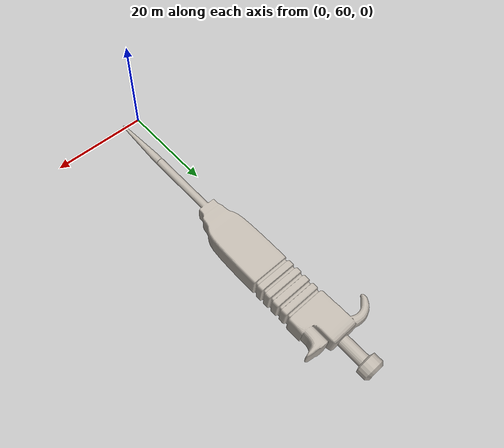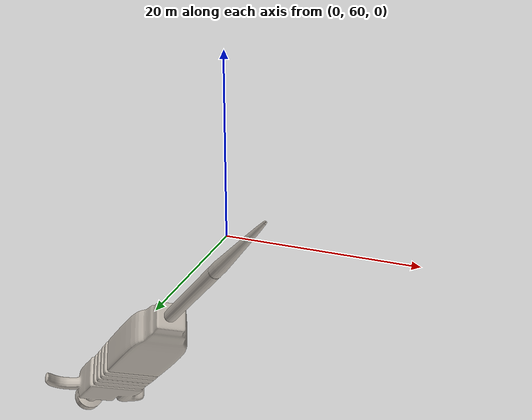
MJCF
<mujoco model="0d69f592da05417889167c3ac4d73565">
  <default>
    <default class="visual">
      <geom group="2" type="mesh" contype="0" conaffinity="0"/>
    </default>
    <default class="collision">
      <geom group="3" type="mesh"/>
    </default>
  </default>
  <asset>
    <texture type="2d" name="material_0" file="material_0.png"/>
    <material name="material_0" texture="material_0" specular="0.4000000000000001" shininess="0.001"/>
    <mesh file="0d69f592da05417889167c3ac4d73565.obj"/>
    <mesh file="0d69f592da05417889167c3ac4d73565_collision_0.obj"/>
    <mesh file="0d69f592da05417889167c3ac4d73565_collision_1.obj"/>
    <mesh file="0d69f592da05417889167c3ac4d73565_collision_2.obj"/>
    <mesh file="0d69f592da05417889167c3ac4d73565_collision_3.obj"/>
    <mesh file="0d69f592da05417889167c3ac4d73565_collision_4.obj"/>
  </asset>
  <worldbody>
    <body name="0d69f592da05417889167c3ac4d73565">
      <freejoint/>
      <geom material="material_0" mesh="0d69f592da05417889167c3ac4d73565" class="visual"/>
      <geom mesh="0d69f592da05417889167c3ac4d73565_collision_0" rgba="0.37257429797692354 0.6884735654970516 0.719600868506313 1" class="collision"/>
      <geom mesh="0d69f592da05417889167c3ac4d73565_collision_1" rgba="0.1552800772112295 0.8237841247251462 0.23134621567153457 1" class="collision"/>
      <geom mesh="0d69f592da05417889167c3ac4d73565_collision_2" rgba="0.39452353442649646 0.6401802604536075 0.3739762730827255 1" class="collision"/>
      <geom mesh="0d69f592da05417889167c3ac4d73565_collision_3" rgba="0.7964628568259631 0.4665544205657782 0.7031579653882075 1" class="collision"/>
      <geom mesh="0d69f592da05417889167c3ac4d73565_collision_4" rgba="0.035064221018163866 0.7670943568281147 0.585556482300559 1" class="collision"/>
    </body>
  </worldbody>
</mujoco>
